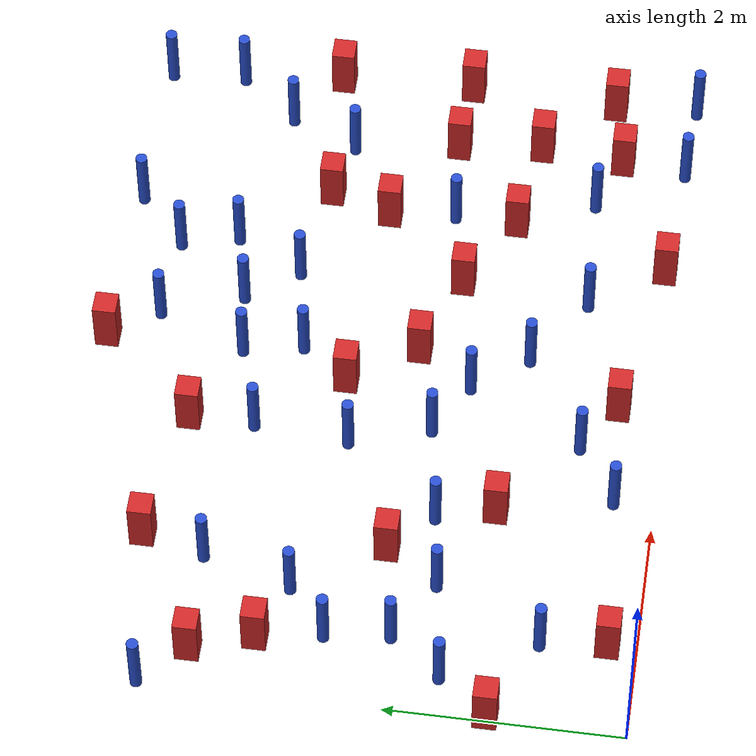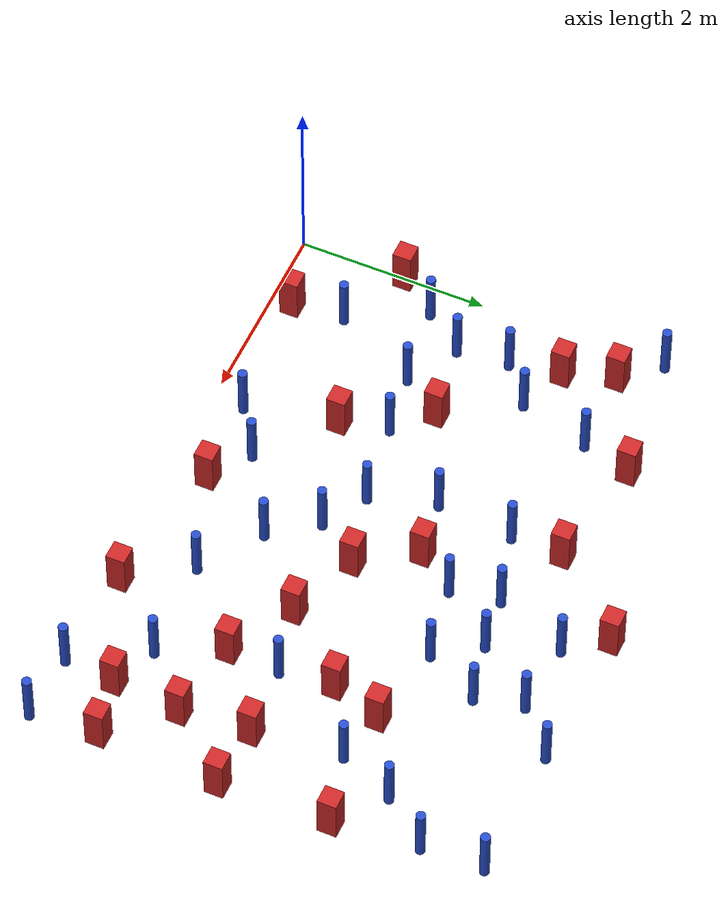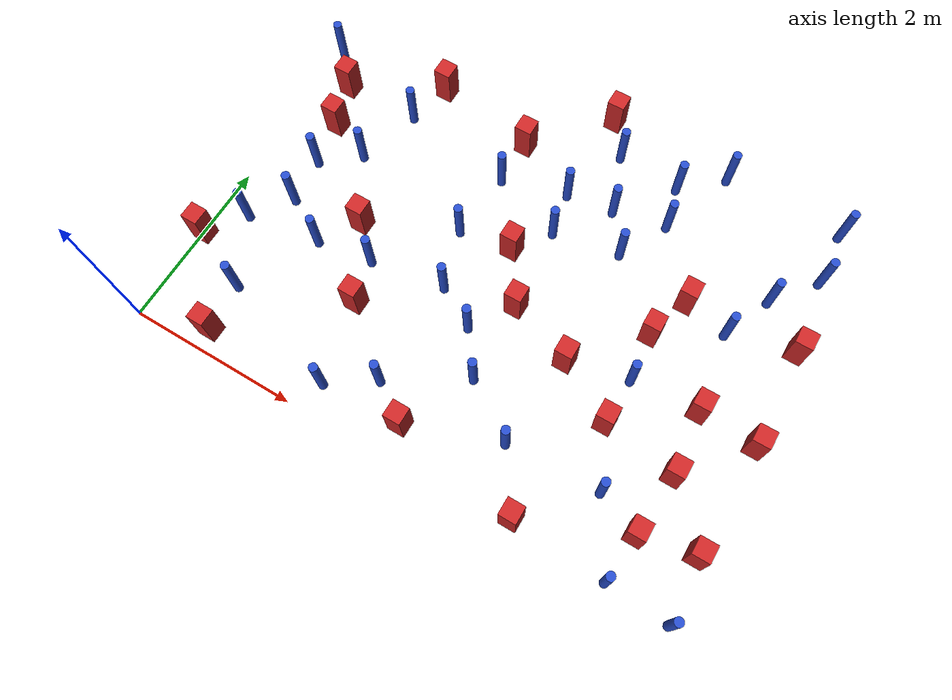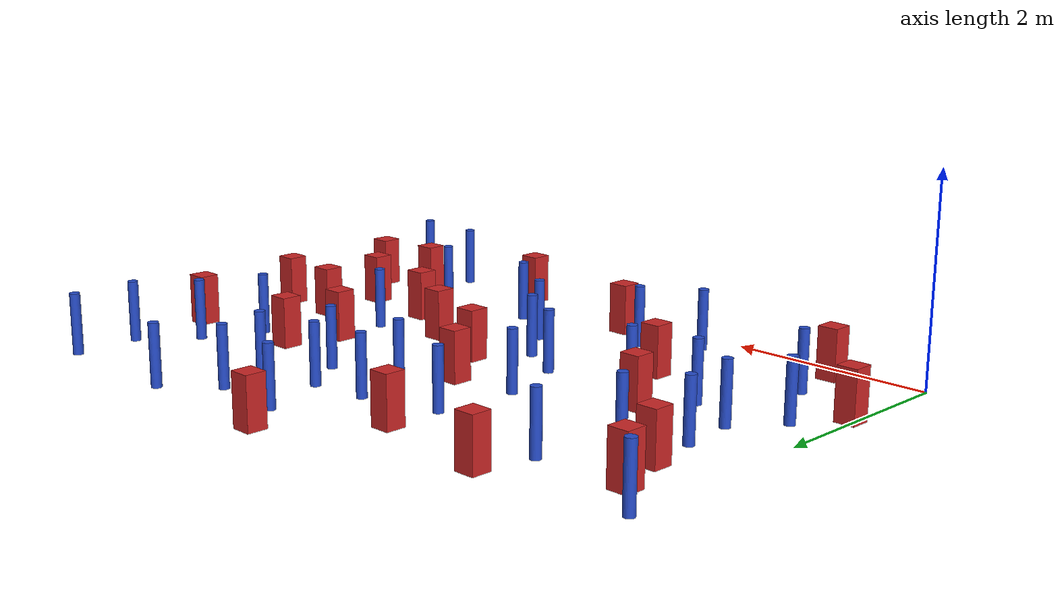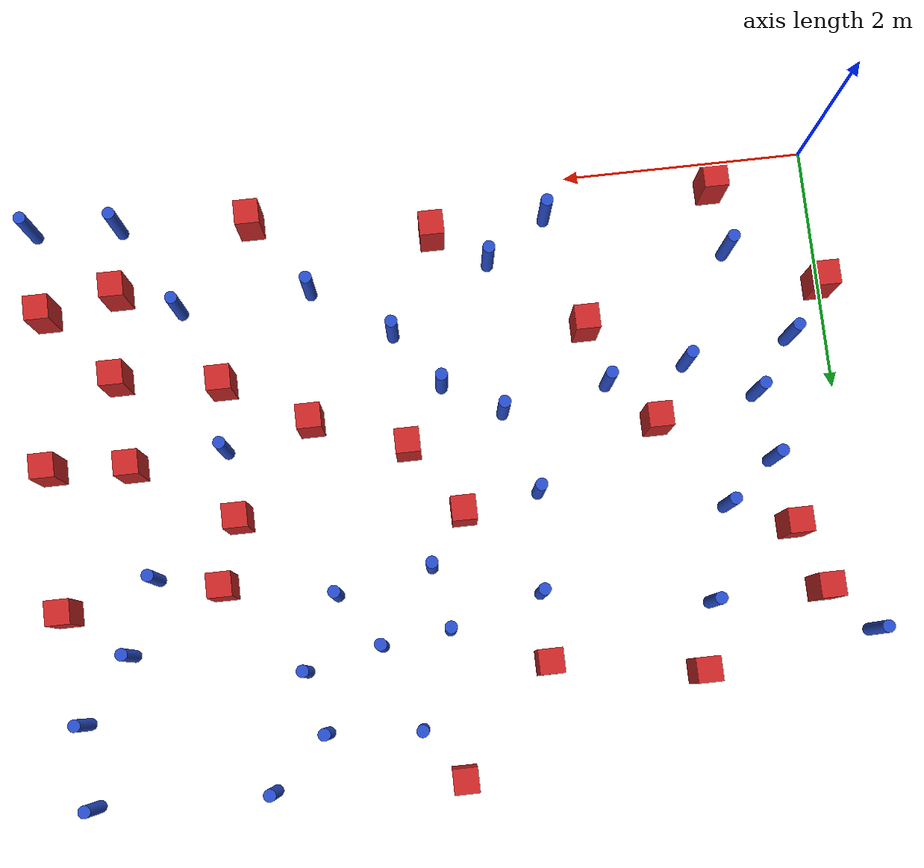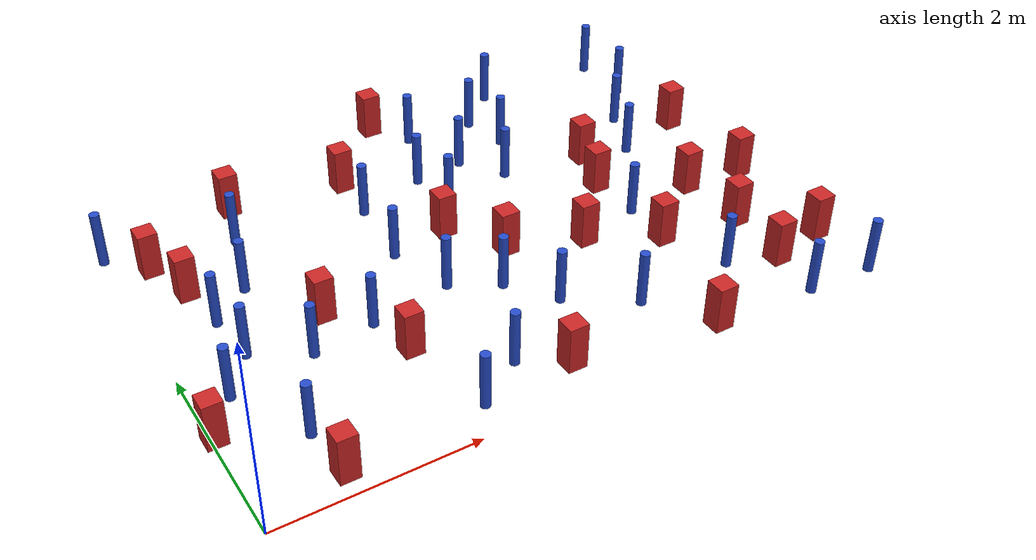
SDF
<sdf version="1.6">
 <model name="dense_44">
  <model name="pole_obstacle0">
   <static>true</static>
   <pose>0.76218171541 0.797468193769 7.38925637345e-09 -8.47170692799e-08 1.24976765008e-08 -1.7451309302e-07</pose>
   <link name="link">
    <pose>0 0 0.3 0 -0 0</pose>
    <inertial>
     <mass>1</mass>
     <inertia><ixx>0.145833</ixx><ixy>0</ixy><ixz>0</ixz><iyy>0.145833</iyy><iyz>0</iyz><izz>0.125</izz></inertia>
    </inertial>
    <collision name="collision">
     <geometry><cylinder><radius>0.05</radius><length>.6</length></cylinder></geometry>
    </collision>
    <visual name="visual">
     <geometry><cylinder><radius>0.05</radius><length>.6</length></cylinder></geometry>
     <material>
      <script><name>Gazebo/Blue</name><uri>file://media/materials/scripts/gazebo.material</uri></script>
     </material>
    </visual>
   </link>
  </model>
  <model name="pole_obstacle10">
   <static>true</static>
   <pose>4.20949864032 0.770058361071 7.38925637345e-09 -8.47170692799e-08 1.24976765038e-08 -1.74513093018e-07</pose>
   <link name="link">
    <pose>0 0 0.3 0 -0 0</pose>
    <inertial>
     <mass>1</mass>
     <inertia><ixx>0.145833</ixx><ixy>0</ixy><ixz>0</ixz><iyy>0.145833</iyy><iyz>0</iyz><izz>0.125</izz></inertia>
    </inertial>
    <collision name="collision">
     <geometry><cylinder><radius>0.05</radius><length>.6</length></cylinder></geometry>
    </collision>
    <visual name="visual">
     <geometry><cylinder><radius>0.05</radius><length>.6</length></cylinder></geometry>
     <material>
      <script><name>Gazebo/Blue</name><uri>file://media/materials/scripts/gazebo.material</uri></script>
     </material>
    </visual>
   </link>
  </model>
  <model name="pole_obstacle14">
   <static>true</static>
   <pose>5.28901740796 0.820832074748 7.38925637345e-09 -8.47170692799e-08 1.24976765038e-08 -1.74513093018e-07</pose>
   <link name="link">
    <pose>0 0 0.3 0 -0 0</pose>
    <inertial>
     <mass>1</mass>
     <inertia><ixx>0.145833</ixx><ixy>0</ixy><ixz>0</ixz><iyy>0.145833</iyy><iyz>0</iyz><izz>0.125</izz></inertia>
    </inertial>
    <collision name="collision">
     <geometry><cylinder><radius>0.05</radius><length>.6</length></cylinder></geometry>
    </collision>
    <visual name="visual">
     <geometry><cylinder><radius>0.05</radius><length>.6</length></cylinder></geometry>
     <material>
      <script><name>Gazebo/Blue</name><uri>file://media/materials/scripts/gazebo.material</uri></script>
     </material>
    </visual>
   </link>
  </model>
  <model name="square_post_obstacle32">
   <static>true</static>
   <pose>5.12099328849 3.12723572732 1.91545236811e-07 -7.35059704564e-06 1.12565212e-07 2.39332434364e-05</pose>
   <link name="link">
    <pose>0 0 0.25 0 -0 0</pose>
    <inertial>
     <mass>100</mass>
     <inertia>
      <ixx>0.166667</ixx>
      <ixy>0</ixy>
      <ixz>0</ixz>
      <iyy>0.166667</iyy>
      <iyz>0</iyz>
      <izz>0.166667</izz>
     </inertia>
    </inertial>
    <collision name="collision"><geometry><box><size>.2 .2 .5</size></box></geometry></collision>
    <visual name="visual">
     <geometry><box><size>.2 .2 .5</size></box></geometry>
     <material>
      <script><name>Gazebo/Red</name><uri>file://media/materials/scripts/gazebo.material</uri></script>
     </material>
    </visual>
   </link>
  </model>
  <model name="pole_obstacle30">
   <static>true</static>
   <pose>2.52723140461 2.62695683932 7.38925637345e-09 -8.47170692798e-08 1.24976764939e-08 -1.74513093025e-07</pose>
   <link name="link">
    <pose>0 0 0.3 0 -0 0</pose>
    <inertial>
     <mass>1</mass>
     <inertia><ixx>0.145833</ixx><ixy>0</ixy><ixz>0</ixz><iyy>0.145833</iyy><iyz>0</iyz><izz>0.125</izz></inertia>
    </inertial>
    <collision name="collision">
     <geometry><cylinder><radius>0.05</radius><length>.6</length></cylinder></geometry>
    </collision>
    <visual name="visual">
     <geometry><cylinder><radius>0.05</radius><length>.6</length></cylinder></geometry>
     <material>
      <script><name>Gazebo/Blue</name><uri>file://media/materials/scripts/gazebo.material</uri></script>
     </material>
    </visual>
   </link>
  </model>
  <model name="pole_obstacle32">
   <static>true</static>
   <pose>5.8984603066 3.59196779917 7.38925637345e-09 -8.47170692798e-08 1.24976764937e-08 -1.74513093023e-07</pose>
   <link name="link">
    <pose>0 0 0.3 0 -0 0</pose>
    <inertial>
     <mass>1</mass>
     <inertia><ixx>0.145833</ixx><ixy>0</ixy><ixz>0</ixz><iyy>0.145833</iyy><iyz>0</iyz><izz>0.125</izz></inertia>
    </inertial>
    <collision name="collision">
     <geometry><cylinder><radius>0.05</radius><length>.6</length></cylinder></geometry>
    </collision>
    <visual name="visual">
     <geometry><cylinder><radius>0.05</radius><length>.6</length></cylinder></geometry>
     <material>
      <script><name>Gazebo/Blue</name><uri>file://media/materials/scripts/gazebo.material</uri></script>
     </material>
    </visual>
   </link>
  </model>
  <model name="pole_obstacle41">
   <static>true</static>
   <pose>1.24746454431 3.65702400959 7.38925637345e-09 -8.47170692799e-08 1.24976765053e-08 -1.74513093017e-07</pose>
   <link name="link">
    <pose>0 0 0.3 0 -0 0</pose>
    <inertial>
     <mass>1</mass>
     <inertia><ixx>0.145833</ixx><ixy>0</ixy><ixz>0</ixz><iyy>0.145833</iyy><iyz>0</iyz><izz>0.125</izz></inertia>
    </inertial>
    <collision name="collision">
     <geometry><cylinder><radius>0.05</radius><length>.6</length></cylinder></geometry>
    </collision>
    <visual name="visual">
     <geometry><cylinder><radius>0.05</radius><length>.6</length></cylinder></geometry>
     <material>
      <script><name>Gazebo/Blue</name><uri>file://media/materials/scripts/gazebo.material</uri></script>
     </material>
    </visual>
   </link>
  </model>
  <model name="pole_obstacle42">
   <static>true</static>
   <pose>4.22462793576 3.28520064528 7.38925637345e-09 -8.47170692798e-08 1.24976764937e-08 -1.74513093023e-07</pose>
   <link name="link">
    <pose>0 0 0.3 0 -0 0</pose>
    <inertial>
     <mass>1</mass>
     <inertia><ixx>0.145833</ixx><ixy>0</ixy><ixz>0</ixz><iyy>0.145833</iyy><iyz>0</iyz><izz>0.125</izz></inertia>
    </inertial>
    <collision name="collision">
     <geometry><cylinder><radius>0.05</radius><length>.6</length></cylinder></geometry>
    </collision>
    <visual name="visual">
     <geometry><cylinder><radius>0.05</radius><length>.6</length></cylinder></geometry>
     <material>
      <script><name>Gazebo/Blue</name><uri>file://media/materials/scripts/gazebo.material</uri></script>
     </material>
    </visual>
   </link>
  </model>
  <model name="square_post_obstacle40">
   <static>true</static>
   <pose>4.98894578105 1.48097292992 1.91545236811e-07 -7.35059704564e-06 1.12565212e-07 2.39332434364e-05</pose>
   <link name="link">
    <pose>0 0 0.25 0 -0 0</pose>
    <inertial>
     <mass>100</mass>
     <inertia>
      <ixx>0.166667</ixx>
      <ixy>0</ixy>
      <ixz>0</ixz>
      <iyy>0.166667</iyy>
      <iyz>0</iyz>
      <izz>0.166667</izz>
     </inertia>
    </inertial>
    <collision name="collision"><geometry><box><size>.2 .2 .5</size></box></geometry></collision>
    <visual name="visual">
     <geometry><box><size>.2 .2 .5</size></box></geometry>
     <material>
      <script><name>Gazebo/Red</name><uri>file://media/materials/scripts/gazebo.material</uri></script>
     </material>
    </visual>
   </link>
  </model>
  <model name="pole_obstacle49">
   <static>true</static>
   <pose>3.21323406869 1.67032624601 7.38925637345e-09 -8.471706928e-08 1.24976765152e-08 -1.74513093012e-07</pose>
   <link name="link">
    <pose>0 0 0.3 0 -0 0</pose>
    <inertial>
     <mass>1</mass>
     <inertia><ixx>0.145833</ixx><ixy>0</ixy><ixz>0</ixz><iyy>0.145833</iyy><iyz>0</iyz><izz>0.125</izz></inertia>
    </inertial>
    <collision name="collision">
     <geometry><cylinder><radius>0.05</radius><length>.6</length></cylinder></geometry>
    </collision>
    <visual name="visual">
     <geometry><cylinder><radius>0.05</radius><length>.6</length></cylinder></geometry>
     <material>
      <script><name>Gazebo/Blue</name><uri>file://media/materials/scripts/gazebo.material</uri></script>
     </material>
    </visual>
   </link>
  </model>
  <model name="pole_obstacle57">
   <static>true</static>
   <pose>0.613665370232 2.56215941622 7.38925637345e-09 -8.47170692799e-08 1.2497676509e-08 -1.74513093016e-07</pose>
   <link name="link">
    <pose>0 0 0.3 0 -0 0</pose>
    <inertial>
     <mass>1</mass>
     <inertia><ixx>0.145833</ixx><ixy>0</ixy><ixz>0</ixz><iyy>0.145833</iyy><iyz>0</iyz><izz>0.125</izz></inertia>
    </inertial>
    <collision name="collision">
     <geometry><cylinder><radius>0.05</radius><length>.6</length></cylinder></geometry>
    </collision>
    <visual name="visual">
     <geometry><cylinder><radius>0.05</radius><length>.6</length></cylinder></geometry>
     <material>
      <script><name>Gazebo/Blue</name><uri>file://media/materials/scripts/gazebo.material</uri></script>
     </material>
    </visual>
   </link>
  </model>
  <model name="square_post_obstacle67">
   <static>true</static>
   <pose>6.43560135954 2.04056012194 1.91545236811e-07 -7.35059704564e-06 1.12565212e-07 2.39332434364e-05</pose>
   <link name="link">
    <pose>0 0 0.25 0 -0 0</pose>
    <inertial>
     <mass>100</mass>
     <inertia>
      <ixx>0.166667</ixx>
      <ixy>0</ixy>
      <ixz>0</ixz>
      <iyy>0.166667</iyy>
      <iyz>0</iyz>
      <izz>0.166667</izz>
     </inertia>
    </inertial>
    <collision name="collision"><geometry><box><size>.2 .2 .5</size></box></geometry></collision>
    <visual name="visual">
     <geometry><box><size>.2 .2 .5</size></box></geometry>
     <material>
      <script><name>Gazebo/Red</name><uri>file://media/materials/scripts/gazebo.material</uri></script>
     </material>
    </visual>
   </link>
  </model>
  <model name="pole_obstacle71">
   <static>true</static>
   <pose>5.65012466 3.00601890965 7.38925637345e-09 -8.47170692798e-08 1.24976764937e-08 -1.74513093023e-07</pose>
   <link name="link">
    <pose>0 0 0.3 0 -0 0</pose>
    <inertial>
     <mass>1</mass>
     <inertia><ixx>0.145833</ixx><ixy>0</ixy><ixz>0</ixz><iyy>0.145833</iyy><iyz>0</iyz><izz>0.125</izz></inertia>
    </inertial>
    <collision name="collision">
     <geometry><cylinder><radius>0.05</radius><length>.6</length></cylinder></geometry>
    </collision>
    <visual name="visual">
     <geometry><cylinder><radius>0.05</radius><length>.6</length></cylinder></geometry>
     <material>
      <script><name>Gazebo/Blue</name><uri>file://media/materials/scripts/gazebo.material</uri></script>
     </material>
    </visual>
   </link>
  </model>
  <model name="pole_obstacle72">
   <static>true</static>
   <pose>1.21386074899 1.70294318727 7.38925637345e-09 -8.471706928e-08 1.24976765079e-08 -1.74513093017e-07</pose>
   <link name="link">
    <pose>0 0 0.3 0 -0 0</pose>
    <inertial>
     <mass>1</mass>
     <inertia><ixx>0.145833</ixx><ixy>0</ixy><ixz>0</ixz><iyy>0.145833</iyy><iyz>0</iyz><izz>0.125</izz></inertia>
    </inertial>
    <collision name="collision">
     <geometry><cylinder><radius>0.05</radius><length>.6</length></cylinder></geometry>
    </collision>
    <visual name="visual">
     <geometry><cylinder><radius>0.05</radius><length>.6</length></cylinder></geometry>
     <material>
      <script><name>Gazebo/Blue</name><uri>file://media/materials/scripts/gazebo.material</uri></script>
     </material>
    </visual>
   </link>
  </model>
  <model name="pole_obstacle75">
   <static>true</static>
   <pose>1.02993767477 2.89853686262 7.38925637345e-09 -8.471706928e-08 1.2497676505e-08 -1.74513093017e-07</pose>
   <link name="link">
    <pose>0 0 0.3 0 -0 0</pose>
    <inertial>
     <mass>1</mass>
     <inertia><ixx>0.145833</ixx><ixy>0</ixy><ixz>0</ixz><iyy>0.145833</iyy><iyz>0</iyz><izz>0.125</izz></inertia>
    </inertial>
    <collision name="collision">
     <geometry><cylinder><radius>0.05</radius><length>.6</length></cylinder></geometry>
    </collision>
    <visual name="visual">
     <geometry><cylinder><radius>0.05</radius><length>.6</length></cylinder></geometry>
     <material>
      <script><name>Gazebo/Blue</name><uri>file://media/materials/scripts/gazebo.material</uri></script>
     </material>
    </visual>
   </link>
  </model>
  <model name="pole_obstacle78">
   <static>true</static>
   <pose>6.26691705236 4.74349010426 7.38925637345e-09 -8.47170692796e-08 1.24976764786e-08 -1.74513093032e-07</pose>
   <link name="link">
    <pose>0 0 0.3 0 -0 0</pose>
    <inertial>
     <mass>1</mass>
     <inertia><ixx>0.145833</ixx><ixy>0</ixy><ixz>0</ixz><iyy>0.145833</iyy><iyz>0</iyz><izz>0.125</izz></inertia>
    </inertial>
    <collision name="collision">
     <geometry><cylinder><radius>0.05</radius><length>.6</length></cylinder></geometry>
    </collision>
    <visual name="visual">
     <geometry><cylinder><radius>0.05</radius><length>.6</length></cylinder></geometry>
     <material>
      <script><name>Gazebo/Blue</name><uri>file://media/materials/scripts/gazebo.material</uri></script>
     </material>
    </visual>
   </link>
  </model>
  <model name="square_post_obstacle78">
   <static>true</static>
   <pose>3.16194854522 0.397947053 1.91545236811e-07 -7.35059704564e-06 1.12565212e-07 2.39332434364e-05</pose>
   <link name="link">
    <pose>0 0 0.25 0 -0 0</pose>
    <inertial>
     <mass>100</mass>
     <inertia>
      <ixx>0.166667</ixx>
      <ixy>0</ixy>
      <ixz>0</ixz>
      <iyy>0.166667</iyy>
      <iyz>0</iyz>
      <izz>0.166667</izz>
     </inertia>
    </inertial>
    <collision name="collision"><geometry><box><size>.2 .2 .5</size></box></geometry></collision>
    <visual name="visual">
     <geometry><box><size>.2 .2 .5</size></box></geometry>
     <material>
      <script><name>Gazebo/Red</name><uri>file://media/materials/scripts/gazebo.material</uri></script>
     </material>
    </visual>
   </link>
  </model>
  <model name="pole_obstacle90">
   <static>true</static>
   <pose>5.0090664267 2.02633698189 7.38925637345e-09 -8.47170692799e-08 1.24976765078e-08 -1.74513093016e-07</pose>
   <link name="link">
    <pose>0 0 0.3 0 -0 0</pose>
    <inertial>
     <mass>1</mass>
     <inertia><ixx>0.145833</ixx><ixy>0</ixy><ixz>0</ixz><iyy>0.145833</iyy><iyz>0</iyz><izz>0.125</izz></inertia>
    </inertial>
    <collision name="collision">
     <geometry><cylinder><radius>0.05</radius><length>.6</length></cylinder></geometry>
    </collision>
    <visual name="visual">
     <geometry><cylinder><radius>0.05</radius><length>.6</length></cylinder></geometry>
     <material>
      <script><name>Gazebo/Blue</name><uri>file://media/materials/scripts/gazebo.material</uri></script>
     </material>
    </visual>
   </link>
  </model>
  <model name="pole_obstacle93">
   <static>true</static>
   <pose>2.21652439592 0.342865104431 7.38925637345e-09 -8.471706928e-08 1.24976765172e-08 -1.74513093013e-07</pose>
   <link name="link">
    <pose>0 0 0.3 0 -0 0</pose>
    <inertial>
     <mass>1</mass>
     <inertia><ixx>0.145833</ixx><ixy>0</ixy><ixz>0</ixz><iyy>0.145833</iyy><iyz>0</iyz><izz>0.125</izz></inertia>
    </inertial>
    <collision name="collision">
     <geometry><cylinder><radius>0.05</radius><length>.6</length></cylinder></geometry>
    </collision>
    <visual name="visual">
     <geometry><cylinder><radius>0.05</radius><length>.6</length></cylinder></geometry>
     <material>
      <script><name>Gazebo/Blue</name><uri>file://media/materials/scripts/gazebo.material</uri></script>
     </material>
    </visual>
   </link>
  </model>
  <model name="pole_obstacle95">
   <static>true</static>
   <pose>6.44394067832 0.0369719980429 7.38925637345e-09 -8.471706928e-08 1.24976765155e-08 -1.74513093014e-07</pose>
   <link name="link">
    <pose>0 0 0.3 0 -0 0</pose>
    <inertial>
     <mass>1</mass>
     <inertia><ixx>0.145833</ixx><ixy>0</ixy><ixz>0</ixz><iyy>0.145833</iyy><iyz>0</iyz><izz>0.125</izz></inertia>
    </inertial>
    <collision name="collision">
     <geometry><cylinder><radius>0.05</radius><length>.6</length></cylinder></geometry>
    </collision>
    <visual name="visual">
     <geometry><cylinder><radius>0.05</radius><length>.6</length></cylinder></geometry>
     <material>
      <script><name>Gazebo/Blue</name><uri>file://media/materials/scripts/gazebo.material</uri></script>
     </material>
    </visual>
   </link>
  </model>
  <model name="pole_obstacle98">
   <static>true</static>
   <pose>4.52409720729 3.86716382761 7.38925637345e-09 -8.47170692798e-08 1.24976764937e-08 -1.74513093023e-07</pose>
   <link name="link">
    <pose>0 0 0.3 0 -0 0</pose>
    <inertial>
     <mass>1</mass>
     <inertia><ixx>0.145833</ixx><ixy>0</ixy><ixz>0</ixz><iyy>0.145833</iyy><iyz>0</iyz><izz>0.125</izz></inertia>
    </inertial>
    <collision name="collision">
     <geometry><cylinder><radius>0.05</radius><length>.6</length></cylinder></geometry>
    </collision>
    <visual name="visual">
     <geometry><cylinder><radius>0.05</radius><length>.6</length></cylinder></geometry>
     <material>
      <script><name>Gazebo/Blue</name><uri>file://media/materials/scripts/gazebo.material</uri></script>
     </material>
    </visual>
   </link>
  </model>
  <model name="square_post_obstacle90">
   <static>true</static>
   <pose>5.83918725358 1.35174453937 1.91545236811e-07 -7.35059704564e-06 1.12565212e-07 2.39332434364e-05</pose>
   <link name="link">
    <pose>0 0 0.25 0 -0 0</pose>
    <inertial>
     <mass>100</mass>
     <inertia>
      <ixx>0.166667</ixx>
      <ixy>0</ixy>
      <ixz>0</ixz>
      <iyy>0.166667</iyy>
      <iyz>0</iyz>
      <izz>0.166667</izz>
     </inertia>
    </inertial>
    <collision name="collision"><geometry><box><size>.2 .2 .5</size></box></geometry></collision>
    <visual name="visual">
     <geometry><box><size>.2 .2 .5</size></box></geometry>
     <material>
      <script><name>Gazebo/Red</name><uri>file://media/materials/scripts/gazebo.material</uri></script>
     </material>
    </visual>
   </link>
  </model>
  <model name="pole_obstacle103">
   <static>true</static>
   <pose>5.73049005723 0.0751609560764 7.38925637345e-09 -8.47170692799e-08 1.24976765066e-08 -1.74513093016e-07</pose>
   <link name="link">
    <pose>0 0 0.3 0 -0 0</pose>
    <inertial>
     <mass>1</mass>
     <inertia><ixx>0.145833</ixx><ixy>0</ixy><ixz>0</ixz><iyy>0.145833</iyy><iyz>0</iyz><izz>0.125</izz></inertia>
    </inertial>
    <collision name="collision">
     <geometry><cylinder><radius>0.05</radius><length>.6</length></cylinder></geometry>
    </collision>
    <visual name="visual">
     <geometry><cylinder><radius>0.05</radius><length>.6</length></cylinder></geometry>
     <material>
      <script><name>Gazebo/Blue</name><uri>file://media/materials/scripts/gazebo.material</uri></script>
     </material>
    </visual>
   </link>
  </model>
  <model name="pole_obstacle106">
   <static>true</static>
   <pose>4.85837339135 4.77291450514 7.38925637345e-09 -8.47170692796e-08 1.24976764786e-08 -1.74513093032e-07</pose>
   <link name="link">
    <pose>0 0 0.3 0 -0 0</pose>
    <inertial>
     <mass>1</mass>
     <inertia><ixx>0.145833</ixx><ixy>0</ixy><ixz>0</ixz><iyy>0.145833</iyy><iyz>0</iyz><izz>0.125</izz></inertia>
    </inertial>
    <collision name="collision">
     <geometry><cylinder><radius>0.05</radius><length>.6</length></cylinder></geometry>
    </collision>
    <visual name="visual">
     <geometry><cylinder><radius>0.05</radius><length>.6</length></cylinder></geometry>
     <material>
      <script><name>Gazebo/Blue</name><uri>file://media/materials/scripts/gazebo.material</uri></script>
     </material>
    </visual>
   </link>
  </model>
  <model name="square_post_obstacle101">
   <static>true</static>
   <pose>0.819702223792 0.244820161053 1.91545236811e-07 -7.35059704564e-06 1.12565212e-07 2.39332434364e-05</pose>
   <link name="link">
    <pose>0 0 0.25 0 -0 0</pose>
    <inertial>
     <mass>100</mass>
     <inertia>
      <ixx>0.166667</ixx>
      <ixy>0</ixy>
      <ixz>0</ixz>
      <iyy>0.166667</iyy>
      <iyz>0</iyz>
      <izz>0.166667</izz>
     </inertia>
    </inertial>
    <collision name="collision"><geometry><box><size>.2 .2 .5</size></box></geometry></collision>
    <visual name="visual">
     <geometry><box><size>.2 .2 .5</size></box></geometry>
     <material>
      <script><name>Gazebo/Red</name><uri>file://media/materials/scripts/gazebo.material</uri></script>
     </material>
    </visual>
   </link>
  </model>
  <model name="pole_obstacle115">
   <static>true</static>
   <pose>-0.00590156966855 4.01124573222 7.38925637345e-09 -8.47170692799e-08 1.24976765055e-08 -1.74513093019e-07</pose>
   <link name="link">
    <pose>0 0 0.3 0 -0 0</pose>
    <inertial>
     <mass>1</mass>
     <inertia><ixx>0.145833</ixx><ixy>0</ixy><ixz>0</ixz><iyy>0.145833</iyy><iyz>0</iyz><izz>0.125</izz></inertia>
    </inertial>
    <collision name="collision">
     <geometry><cylinder><radius>0.05</radius><length>.6</length></cylinder></geometry>
    </collision>
    <visual name="visual">
     <geometry><cylinder><radius>0.05</radius><length>.6</length></cylinder></geometry>
     <material>
      <script><name>Gazebo/Blue</name><uri>file://media/materials/scripts/gazebo.material</uri></script>
     </material>
    </visual>
   </link>
  </model>
  <model name="square_post_obstacle103">
   <static>true</static>
   <pose>3.36276971674 4.83112434174 1.91545236811e-07 -7.35059704564e-06 1.12565212e-07 2.39332434364e-05</pose>
   <link name="link">
    <pose>0 0 0.25 0 -0 0</pose>
    <inertial>
     <mass>100</mass>
     <inertia>
      <ixx>0.166667</ixx>
      <ixy>0</ixy>
      <ixz>0</ixz>
      <iyy>0.166667</iyy>
      <iyz>0</iyz>
      <izz>0.166667</izz>
     </inertia>
    </inertial>
    <collision name="collision"><geometry><box><size>.2 .2 .5</size></box></geometry></collision>
    <visual name="visual">
     <geometry><box><size>.2 .2 .5</size></box></geometry>
     <material>
      <script><name>Gazebo/Red</name><uri>file://media/materials/scripts/gazebo.material</uri></script>
     </material>
    </visual>
   </link>
  </model>
  <model name="square_post_obstacle110">
   <static>true</static>
   <pose>1.51268201704 2.15584435601 1.91545236811e-07 -7.35059704564e-06 1.12565212e-07 2.39332434364e-05</pose>
   <link name="link">
    <pose>0 0 0.25 0 -0 0</pose>
    <inertial>
     <mass>100</mass>
     <inertia>
      <ixx>0.166667</ixx>
      <ixy>0</ixy>
      <ixz>0</ixz>
      <iyy>0.166667</iyy>
      <iyz>0</iyz>
      <izz>0.166667</izz>
     </inertia>
    </inertial>
    <collision name="collision"><geometry><box><size>.2 .2 .5</size></box></geometry></collision>
    <visual name="visual">
     <geometry><box><size>.2 .2 .5</size></box></geometry>
     <material>
      <script><name>Gazebo/Red</name><uri>file://media/materials/scripts/gazebo.material</uri></script>
     </material>
    </visual>
   </link>
  </model>
  <model name="pole_obstacle120">
   <static>true</static>
   <pose>2.72475846898 0.678446760782 7.38925637345e-09 -8.471706928e-08 1.24976765177e-08 -1.74513093012e-07</pose>
   <link name="link">
    <pose>0 0 0.3 0 -0 0</pose>
    <inertial>
     <mass>1</mass>
     <inertia><ixx>0.145833</ixx><ixy>0</ixy><ixz>0</ixz><iyy>0.145833</iyy><iyz>0</iyz><izz>0.125</izz></inertia>
    </inertial>
    <collision name="collision">
     <geometry><cylinder><radius>0.05</radius><length>.6</length></cylinder></geometry>
    </collision>
    <visual name="visual">
     <geometry><cylinder><radius>0.05</radius><length>.6</length></cylinder></geometry>
     <material>
      <script><name>Gazebo/Blue</name><uri>file://media/materials/scripts/gazebo.material</uri></script>
     </material>
    </visual>
   </link>
  </model>
  <model name="pole_obstacle123">
   <static>true</static>
   <pose>2.73888788131 1.94197333173 7.38925637345e-09 -8.471706928e-08 1.24976765152e-08 -1.74513093012e-07</pose>
   <link name="link">
    <pose>0 0 0.3 0 -0 0</pose>
    <inertial>
     <mass>1</mass>
     <inertia><ixx>0.145833</ixx><ixy>0</ixy><ixz>0</ixz><iyy>0.145833</iyy><iyz>0</iyz><izz>0.125</izz></inertia>
    </inertial>
    <collision name="collision">
     <geometry><cylinder><radius>0.05</radius><length>.6</length></cylinder></geometry>
    </collision>
    <visual name="visual">
     <geometry><cylinder><radius>0.05</radius><length>.6</length></cylinder></geometry>
     <material>
      <script><name>Gazebo/Blue</name><uri>file://media/materials/scripts/gazebo.material</uri></script>
     </material>
    </visual>
   </link>
  </model>
  <model name="pole_obstacle129">
   <static>true</static>
   <pose>4.40363573176 4.3644624454 7.38925637345e-09 -8.47170692796e-08 1.24976764786e-08 -1.74513093032e-07</pose>
   <link name="link">
    <pose>0 0 0.3 0 -0 0</pose>
    <inertial>
     <mass>1</mass>
     <inertia><ixx>0.145833</ixx><ixy>0</ixy><ixz>0</ixz><iyy>0.145833</iyy><iyz>0</iyz><izz>0.125</izz></inertia>
    </inertial>
    <collision name="collision">
     <geometry><cylinder><radius>0.05</radius><length>.6</length></cylinder></geometry>
    </collision>
    <visual name="visual">
     <geometry><cylinder><radius>0.05</radius><length>.6</length></cylinder></geometry>
     <material>
      <script><name>Gazebo/Blue</name><uri>file://media/materials/scripts/gazebo.material</uri></script>
     </material>
    </visual>
   </link>
  </model>
  <model name="pole_obstacle134">
   <static>true</static>
   <pose>2.59767353793 3.44183365562 7.38925637345e-09 -8.47170692798e-08 1.24976764939e-08 -1.74513093025e-07</pose>
   <link name="link">
    <pose>0 0 0.3 0 -0 0</pose>
    <inertial>
     <mass>1</mass>
     <inertia><ixx>0.145833</ixx><ixy>0</ixy><ixz>0</ixz><iyy>0.145833</iyy><iyz>0</iyz><izz>0.125</izz></inertia>
    </inertial>
    <collision name="collision">
     <geometry><cylinder><radius>0.05</radius><length>.6</length></cylinder></geometry>
    </collision>
    <visual name="visual">
     <geometry><cylinder><radius>0.05</radius><length>.6</length></cylinder></geometry>
     <material>
      <script><name>Gazebo/Blue</name><uri>file://media/materials/scripts/gazebo.material</uri></script>
     </material>
    </visual>
   </link>
  </model>
  <model name="square_post_obstacle121">
   <static>true</static>
   <pose>4.95187976401 2.59598308313 1.91545236811e-07 -7.35059704564e-06 1.12565212e-07 2.39332434364e-05</pose>
   <link name="link">
    <pose>0 0 0.25 0 -0 0</pose>
    <inertial>
     <mass>100</mass>
     <inertia>
      <ixx>0.166667</ixx>
      <ixy>0</ixy>
      <ixz>0</ixz>
      <iyy>0.166667</iyy>
      <iyz>0</iyz>
      <izz>0.166667</izz>
     </inertia>
    </inertial>
    <collision name="collision"><geometry><box><size>.2 .2 .5</size></box></geometry></collision>
    <visual name="visual">
     <geometry><box><size>.2 .2 .5</size></box></geometry>
     <material>
      <script><name>Gazebo/Red</name><uri>file://media/materials/scripts/gazebo.material</uri></script>
     </material>
    </visual>
   </link>
  </model>
  <model name="square_post_obstacle130">
   <static>true</static>
   <pose>6.39241273967 3.20729984381 1.91545236811e-07 -7.35059704564e-06 1.12565212e-07 2.39332434364e-05</pose>
   <link name="link">
    <pose>0 0 0.25 0 -0 0</pose>
    <inertial>
     <mass>100</mass>
     <inertia>
      <ixx>0.166667</ixx>
      <ixy>0</ixy>
      <ixz>0</ixz>
      <iyy>0.166667</iyy>
      <iyz>0</iyz>
      <izz>0.166667</izz>
     </inertia>
    </inertial>
    <collision name="collision"><geometry><box><size>.2 .2 .5</size></box></geometry></collision>
    <visual name="visual">
     <geometry><box><size>.2 .2 .5</size></box></geometry>
     <material>
      <script><name>Gazebo/Red</name><uri>file://media/materials/scripts/gazebo.material</uri></script>
     </material>
    </visual>
   </link>
  </model>
  <model name="square_post_obstacle136">
   <static>true</static>
   <pose>4.64241341437 0.146112052137 1.91545236811e-07 -7.35059704564e-06 1.12565212e-07 2.39332434364e-05</pose>
   <link name="link">
    <pose>0 0 0.25 0 -0 0</pose>
    <inertial>
     <mass>100</mass>
     <inertia>
      <ixx>0.166667</ixx>
      <ixy>0</ixy>
      <ixz>0</ixz>
      <iyy>0.166667</iyy>
      <iyz>0</iyz>
      <izz>0.166667</izz>
     </inertia>
    </inertial>
    <collision name="collision"><geometry><box><size>.2 .2 .5</size></box></geometry></collision>
    <visual name="visual">
     <geometry><box><size>.2 .2 .5</size></box></geometry>
     <material>
      <script><name>Gazebo/Red</name><uri>file://media/materials/scripts/gazebo.material</uri></script>
     </material>
    </visual>
   </link>
  </model>
  <model name="square_post_obstacle138">
   <static>true</static>
   <pose>5.77258071287 2.08551848247 1.91545236811e-07 -7.35059704564e-06 1.12565212e-07 2.39332434364e-05</pose>
   <link name="link">
    <pose>0 0 0.25 0 -0 0</pose>
    <inertial>
     <mass>100</mass>
     <inertia>
      <ixx>0.166667</ixx>
      <ixy>0</ixy>
      <ixz>0</ixz>
      <iyy>0.166667</iyy>
      <iyz>0</iyz>
      <izz>0.166667</izz>
     </inertia>
    </inertial>
    <collision name="collision"><geometry><box><size>.2 .2 .5</size></box></geometry></collision>
    <visual name="visual">
     <geometry><box><size>.2 .2 .5</size></box></geometry>
     <material>
      <script><name>Gazebo/Red</name><uri>file://media/materials/scripts/gazebo.material</uri></script>
     </material>
    </visual>
   </link>
  </model>
  <model name="pole_obstacle150">
   <static>true</static>
   <pose>3.35147035694 3.65560660579 7.38925637345e-09 -8.47170692798e-08 1.24976764939e-08 -1.74513093025e-07</pose>
   <link name="link">
    <pose>0 0 0.3 0 -0 0</pose>
    <inertial>
     <mass>1</mass>
     <inertia><ixx>0.145833</ixx><ixy>0</ixy><ixz>0</ixz><iyy>0.145833</iyy><iyz>0</iyz><izz>0.125</izz></inertia>
    </inertial>
    <collision name="collision">
     <geometry><cylinder><radius>0.05</radius><length>.6</length></cylinder></geometry>
    </collision>
    <visual name="visual">
     <geometry><cylinder><radius>0.05</radius><length>.6</length></cylinder></geometry>
     <material>
      <script><name>Gazebo/Blue</name><uri>file://media/materials/scripts/gazebo.material</uri></script>
     </material>
    </visual>
   </link>
  </model>
  <model name="square_post_obstacle152">
   <static>true</static>
   <pose>3.53837416609 2.14769283572 1.91545236811e-07 -7.35059704564e-06 1.12565212e-07 2.39332434364e-05</pose>
   <link name="link">
    <pose>0 0 0.25 0 -0 0</pose>
    <inertial>
     <mass>100</mass>
     <inertia>
      <ixx>0.166667</ixx>
      <ixy>0</ixy>
      <ixz>0</ixz>
      <iyy>0.166667</iyy>
      <iyz>0</iyz>
      <izz>0.166667</izz>
     </inertia>
    </inertial>
    <collision name="collision"><geometry><box><size>.2 .2 .5</size></box></geometry></collision>
    <visual name="visual">
     <geometry><box><size>.2 .2 .5</size></box></geometry>
     <material>
      <script><name>Gazebo/Red</name><uri>file://media/materials/scripts/gazebo.material</uri></script>
     </material>
    </visual>
   </link>
  </model>
  <model name="square_post_obstacle154">
   <static>true</static>
   <pose>3.15017556188 2.73027083253 1.91545236811e-07 -7.35059704564e-06 1.12565212e-07 2.39332434364e-05</pose>
   <link name="link">
    <pose>0 0 0.25 0 -0 0</pose>
    <inertial>
     <mass>100</mass>
     <inertia>
      <ixx>0.166667</ixx>
      <ixy>0</ixy>
      <ixz>0</ixz>
      <iyy>0.166667</iyy>
      <iyz>0</iyz>
      <izz>0.166667</izz>
     </inertia>
    </inertial>
    <collision name="collision"><geometry><box><size>.2 .2 .5</size></box></geometry></collision>
    <visual name="visual">
     <geometry><box><size>.2 .2 .5</size></box></geometry>
     <material>
      <script><name>Gazebo/Red</name><uri>file://media/materials/scripts/gazebo.material</uri></script>
     </material>
    </visual>
   </link>
  </model>
  <model name="pole_obstacle166">
   <static>true</static>
   <pose>0.342432853295 1.57289980686 7.38925637345e-09 -8.47170692798e-08 1.24976765025e-08 -1.74513093018e-07</pose>
   <link name="link">
    <pose>0 0 0.3 0 -0 0</pose>
    <inertial>
     <mass>1</mass>
     <inertia><ixx>0.145833</ixx><ixy>0</ixy><ixz>0</ixz><iyy>0.145833</iyy><iyz>0</iyz><izz>0.125</izz></inertia>
    </inertial>
    <collision name="collision">
     <geometry><cylinder><radius>0.05</radius><length>.6</length></cylinder></geometry>
    </collision>
    <visual name="visual">
     <geometry><cylinder><radius>0.05</radius><length>.6</length></cylinder></geometry>
     <material>
      <script><name>Gazebo/Blue</name><uri>file://media/materials/scripts/gazebo.material</uri></script>
     </material>
    </visual>
   </link>
  </model>
  <model name="square_post_obstacle163">
   <static>true</static>
   <pose>1.99813202088 1.30529235253 1.91545236811e-07 -7.35059704564e-06 1.12565212e-07 2.39332434364e-05</pose>
   <link name="link">
    <pose>0 0 0.25 0 -0 0</pose>
    <inertial>
     <mass>100</mass>
     <inertia>
      <ixx>0.166667</ixx>
      <ixy>0</ixy>
      <ixz>0</ixz>
      <iyy>0.166667</iyy>
      <iyz>0</iyz>
      <izz>0.166667</izz>
     </inertia>
    </inertial>
    <collision name="collision"><geometry><box><size>.2 .2 .5</size></box></geometry></collision>
    <visual name="visual">
     <geometry><box><size>.2 .2 .5</size></box></geometry>
     <material>
      <script><name>Gazebo/Red</name><uri>file://media/materials/scripts/gazebo.material</uri></script>
     </material>
    </visual>
   </link>
  </model>
  <model name="pole_obstacle180">
   <static>true</static>
   <pose>1.86828720424 1.79997021869 7.38925637345e-09 -8.471706928e-08 1.24976765079e-08 -1.74513093017e-07</pose>
   <link name="link">
    <pose>0 0 0.3 0 -0 0</pose>
    <inertial>
     <mass>1</mass>
     <inertia><ixx>0.145833</ixx><ixy>0</ixy><ixz>0</ixz><iyy>0.145833</iyy><iyz>0</iyz><izz>0.125</izz></inertia>
    </inertial>
    <collision name="collision">
     <geometry><cylinder><radius>0.05</radius><length>.6</length></cylinder></geometry>
    </collision>
    <visual name="visual">
     <geometry><cylinder><radius>0.05</radius><length>.6</length></cylinder></geometry>
     <material>
      <script><name>Gazebo/Blue</name><uri>file://media/materials/scripts/gazebo.material</uri></script>
     </material>
    </visual>
   </link>
  </model>
  <model name="square_post_obstacle170">
   <static>true</static>
   <pose>0.0320725464589 1.15368942238 1.91545236811e-07 -7.35059704564e-06 1.12565212e-07 2.39332434364e-05</pose>
   <link name="link">
    <pose>0 0 0.25 0 -0 0</pose>
    <inertial>
     <mass>100</mass>
     <inertia>
      <ixx>0.166667</ixx>
      <ixy>0</ixy>
      <ixz>0</ixz>
      <iyy>0.166667</iyy>
      <iyz>0</iyz>
      <izz>0.166667</izz>
     </inertia>
    </inertial>
    <collision name="collision"><geometry><box><size>.2 .2 .5</size></box></geometry></collision>
    <visual name="visual">
     <geometry><box><size>.2 .2 .5</size></box></geometry>
     <material>
      <script><name>Gazebo/Red</name><uri>file://media/materials/scripts/gazebo.material</uri></script>
     </material>
    </visual>
   </link>
  </model>
  <model name="square_post_obstacle171">
   <static>true</static>
   <pose>0.523329339738 3.11106323171 1.91545236811e-07 -7.35059704564e-06 1.12565212e-07 2.39332434364e-05</pose>
   <link name="link">
    <pose>0 0 0.25 0 -0 0</pose>
    <inertial>
     <mass>100</mass>
     <inertia>
      <ixx>0.166667</ixx>
      <ixy>0</ixy>
      <ixz>0</ixz>
      <iyy>0.166667</iyy>
      <iyz>0</iyz>
      <izz>0.166667</izz>
     </inertia>
    </inertial>
    <collision name="collision"><geometry><box><size>.2 .2 .5</size></box></geometry></collision>
    <visual name="visual">
     <geometry><box><size>.2 .2 .5</size></box></geometry>
     <material>
      <script><name>Gazebo/Red</name><uri>file://media/materials/scripts/gazebo.material</uri></script>
     </material>
    </visual>
   </link>
  </model>
  <model name="pole_obstacle184">
   <static>true</static>
   <pose>3.90626888729 3.7287185889 7.38925637345e-09 -8.47170692798e-08 1.24976764939e-08 -1.74513093025e-07</pose>
   <link name="link">
    <pose>0 0 0.3 0 -0 0</pose>
    <inertial>
     <mass>1</mass>
     <inertia><ixx>0.145833</ixx><ixy>0</ixy><ixz>0</ixz><iyy>0.145833</iyy><iyz>0</iyz><izz>0.125</izz></inertia>
    </inertial>
    <collision name="collision">
     <geometry><cylinder><radius>0.05</radius><length>.6</length></cylinder></geometry>
    </collision>
    <visual name="visual">
     <geometry><cylinder><radius>0.05</radius><length>.6</length></cylinder></geometry>
     <material>
      <script><name>Gazebo/Blue</name><uri>file://media/materials/scripts/gazebo.material</uri></script>
     </material>
    </visual>
   </link>
  </model>
  <model name="square_post_obstacle188">
   <static>true</static>
   <pose>4.30133216358 1.86766754719 1.91545236811e-07 -7.35059704564e-06 1.12565212e-07 2.39332434364e-05</pose>
   <link name="link">
    <pose>0 0 0.25 0 -0 0</pose>
    <inertial>
     <mass>100</mass>
     <inertia>
      <ixx>0.166667</ixx>
      <ixy>0</ixy>
      <ixz>0</ixz>
      <iyy>0.166667</iyy>
      <iyz>0</iyz>
      <izz>0.166667</izz>
     </inertia>
    </inertial>
    <collision name="collision"><geometry><box><size>.2 .2 .5</size></box></geometry></collision>
    <visual name="visual">
     <geometry><box><size>.2 .2 .5</size></box></geometry>
     <material>
      <script><name>Gazebo/Red</name><uri>file://media/materials/scripts/gazebo.material</uri></script>
     </material>
    </visual>
   </link>
  </model>
  <model name="square_post_obstacle189">
   <static>true</static>
   <pose>1.39449797493 4.19047944259 1.91545236811e-07 -7.35059704564e-06 1.12565212e-07 2.39332434364e-05</pose>
   <link name="link">
    <pose>0 0 0.25 0 -0 0</pose>
    <inertial>
     <mass>100</mass>
     <inertia>
      <ixx>0.166667</ixx>
      <ixy>0</ixy>
      <ixz>0</ixz>
      <iyy>0.166667</iyy>
      <iyz>0</iyz>
      <izz>0.166667</izz>
     </inertia>
    </inertial>
    <collision name="collision"><geometry><box><size>.2 .2 .5</size></box></geometry></collision>
    <visual name="visual">
     <geometry><box><size>.2 .2 .5</size></box></geometry>
     <material>
      <script><name>Gazebo/Red</name><uri>file://media/materials/scripts/gazebo.material</uri></script>
     </material>
    </visual>
   </link>
  </model>
  <model name="square_post_obstacle193">
   <static>true</static>
   <pose>0.349546251532 3.63979893119 1.91545236811e-07 -7.35059704564e-06 1.12565212e-07 2.39332434364e-05</pose>
   <link name="link">
    <pose>0 0 0.25 0 -0 0</pose>
    <inertial>
     <mass>100</mass>
     <inertia>
      <ixx>0.166667</ixx>
      <ixy>0</ixy>
      <ixz>0</ixz>
      <iyy>0.166667</iyy>
      <iyz>0</iyz>
      <izz>0.166667</izz>
     </inertia>
    </inertial>
    <collision name="collision"><geometry><box><size>.2 .2 .5</size></box></geometry></collision>
    <visual name="visual">
     <geometry><box><size>.2 .2 .5</size></box></geometry>
     <material>
      <script><name>Gazebo/Red</name><uri>file://media/materials/scripts/gazebo.material</uri></script>
     </material>
    </visual>
   </link>
  </model>
  <model name="pole_obstacle203">
   <static>true</static>
   <pose>3.65072068847 4.41955850734 7.38925637345e-09 -8.47170692798e-08 1.24976765033e-08 -1.74513093019e-07</pose>
   <link name="link">
    <pose>0 0 0.3 0 -0 0</pose>
    <inertial>
     <mass>1</mass>
     <inertia><ixx>0.145833</ixx><ixy>0</ixy><ixz>0</ixz><iyy>0.145833</iyy><iyz>0</iyz><izz>0.125</izz></inertia>
    </inertial>
    <collision name="collision">
     <geometry><cylinder><radius>0.05</radius><length>.6</length></cylinder></geometry>
    </collision>
    <visual name="visual">
     <geometry><cylinder><radius>0.05</radius><length>.6</length></cylinder></geometry>
     <material>
      <script><name>Gazebo/Blue</name><uri>file://media/materials/scripts/gazebo.material</uri></script>
     </material>
    </visual>
   </link>
  </model>
  <model name="pole_obstacle209">
   <static>true</static>
   <pose>0.673844192873 2.01164763277 7.38925637345e-09 -8.47170692799e-08 1.24976765e-08 -1.7451309302e-07</pose>
   <link name="link">
    <pose>0 0 0.3 0 -0 0</pose>
    <inertial>
     <mass>1</mass>
     <inertia><ixx>0.145833</ixx><ixy>0</ixy><ixz>0</ixz><iyy>0.145833</iyy><iyz>0</iyz><izz>0.125</izz></inertia>
    </inertial>
    <collision name="collision">
     <geometry><cylinder><radius>0.05</radius><length>.6</length></cylinder></geometry>
    </collision>
    <visual name="visual">
     <geometry><cylinder><radius>0.05</radius><length>.6</length></cylinder></geometry>
     <material>
      <script><name>Gazebo/Blue</name><uri>file://media/materials/scripts/gazebo.material</uri></script>
     </material>
    </visual>
   </link>
  </model>
  <model name="pole_obstacle211">
   <static>true</static>
   <pose>3.44611258724 3.14090781959 7.38925637345e-09 -8.47170692798e-08 1.24976764939e-08 -1.74513093025e-07</pose>
   <link name="link">
    <pose>0 0 0.3 0 -0 0</pose>
    <inertial>
     <mass>1</mass>
     <inertia><ixx>0.145833</ixx><ixy>0</ixy><ixz>0</ixz><iyy>0.145833</iyy><iyz>0</iyz><izz>0.125</izz></inertia>
    </inertial>
    <collision name="collision">
     <geometry><cylinder><radius>0.05</radius><length>.6</length></cylinder></geometry>
    </collision>
    <visual name="visual">
     <geometry><cylinder><radius>0.05</radius><length>.6</length></cylinder></geometry>
     <material>
      <script><name>Gazebo/Blue</name><uri>file://media/materials/scripts/gazebo.material</uri></script>
     </material>
    </visual>
   </link>
  </model>
  <model name="pole_obstacle216">
   <static>true</static>
   <pose>6.29725184274 4.09321540019 7.38925637345e-09 -8.47170692796e-08 1.24976764786e-08 -1.74513093032e-07</pose>
   <link name="link">
    <pose>0 0 0.3 0 -0 0</pose>
    <inertial>
     <mass>1</mass>
     <inertia><ixx>0.145833</ixx><ixy>0</ixy><ixz>0</ixz><iyy>0.145833</iyy><iyz>0</iyz><izz>0.125</izz></inertia>
    </inertial>
    <collision name="collision">
     <geometry><cylinder><radius>0.05</radius><length>.6</length></cylinder></geometry>
    </collision>
    <visual name="visual">
     <geometry><cylinder><radius>0.05</radius><length>.6</length></cylinder></geometry>
     <material>
      <script><name>Gazebo/Blue</name><uri>file://media/materials/scripts/gazebo.material</uri></script>
     </material>
    </visual>
   </link>
  </model>
  <model name="pole_obstacle218">
   <static>true</static>
   <pose>3.56651351593 1.20079566829 7.38925637345e-09 -8.471706928e-08 1.24976765152e-08 -1.74513093012e-07</pose>
   <link name="link">
    <pose>0 0 0.3 0 -0 0</pose>
    <inertial>
     <mass>1</mass>
     <inertia><ixx>0.145833</ixx><ixy>0</ixy><ixz>0</ixz><iyy>0.145833</iyy><iyz>0</iyz><izz>0.125</izz></inertia>
    </inertial>
    <collision name="collision">
     <geometry><cylinder><radius>0.05</radius><length>.6</length></cylinder></geometry>
    </collision>
    <visual name="visual">
     <geometry><cylinder><radius>0.05</radius><length>.6</length></cylinder></geometry>
     <material>
      <script><name>Gazebo/Blue</name><uri>file://media/materials/scripts/gazebo.material</uri></script>
     </material>
    </visual>
   </link>
  </model>
  <model name="square_post_obstacle211">
   <static>true</static>
   <pose>2.60446704611 3.99567786176 1.91545236811e-07 -7.35059704564e-06 1.12565212e-07 2.39332434364e-05</pose>
   <link name="link">
    <pose>0 0 0.25 0 -0 0</pose>
    <inertial>
     <mass>100</mass>
     <inertia>
      <ixx>0.166667</ixx>
      <ixy>0</ixy>
      <ixz>0</ixz>
      <iyy>0.166667</iyy>
      <iyz>0</iyz>
      <izz>0.166667</izz>
     </inertia>
    </inertial>
    <collision name="collision"><geometry><box><size>.2 .2 .5</size></box></geometry></collision>
    <visual name="visual">
     <geometry><box><size>.2 .2 .5</size></box></geometry>
     <material>
      <script><name>Gazebo/Red</name><uri>file://media/materials/scripts/gazebo.material</uri></script>
     </material>
    </visual>
   </link>
  </model>
  <model name="square_post_obstacle212">
   <static>true</static>
   <pose>5.78091595251 0.629837042114 1.91545236811e-07 -7.35059704564e-06 1.12565212e-07 2.39332434364e-05</pose>
   <link name="link">
    <pose>0 0 0.25 0 -0 0</pose>
    <inertial>
     <mass>100</mass>
     <inertia>
      <ixx>0.166667</ixx>
      <ixy>0</ixy>
      <ixz>0</ixz>
      <iyy>0.166667</iyy>
      <iyz>0</iyz>
      <izz>0.166667</izz>
     </inertia>
    </inertial>
    <collision name="collision"><geometry><box><size>.2 .2 .5</size></box></geometry></collision>
    <visual name="visual">
     <geometry><box><size>.2 .2 .5</size></box></geometry>
     <material>
      <script><name>Gazebo/Red</name><uri>file://media/materials/scripts/gazebo.material</uri></script>
     </material>
    </visual>
   </link>
  </model>
  <model name="square_post_obstacle213">
   <static>true</static>
   <pose>6.39042488039 0.755334284908 1.91545236811e-07 -7.35059704564e-06 1.12565212e-07 2.39332434364e-05</pose>
   <link name="link">
    <pose>0 0 0.25 0 -0 0</pose>
    <inertial>
     <mass>100</mass>
     <inertia>
      <ixx>0.166667</ixx>
      <ixy>0</ixy>
      <ixz>0</ixz>
      <iyy>0.166667</iyy>
      <iyz>0</iyz>
      <izz>0.166667</izz>
     </inertia>
    </inertial>
    <collision name="collision"><geometry><box><size>.2 .2 .5</size></box></geometry></collision>
    <visual name="visual">
     <geometry><box><size>.2 .2 .5</size></box></geometry>
     <material>
      <script><name>Gazebo/Red</name><uri>file://media/materials/scripts/gazebo.material</uri></script>
     </material>
    </visual>
   </link>
  </model>
 </model>
</sdf>
